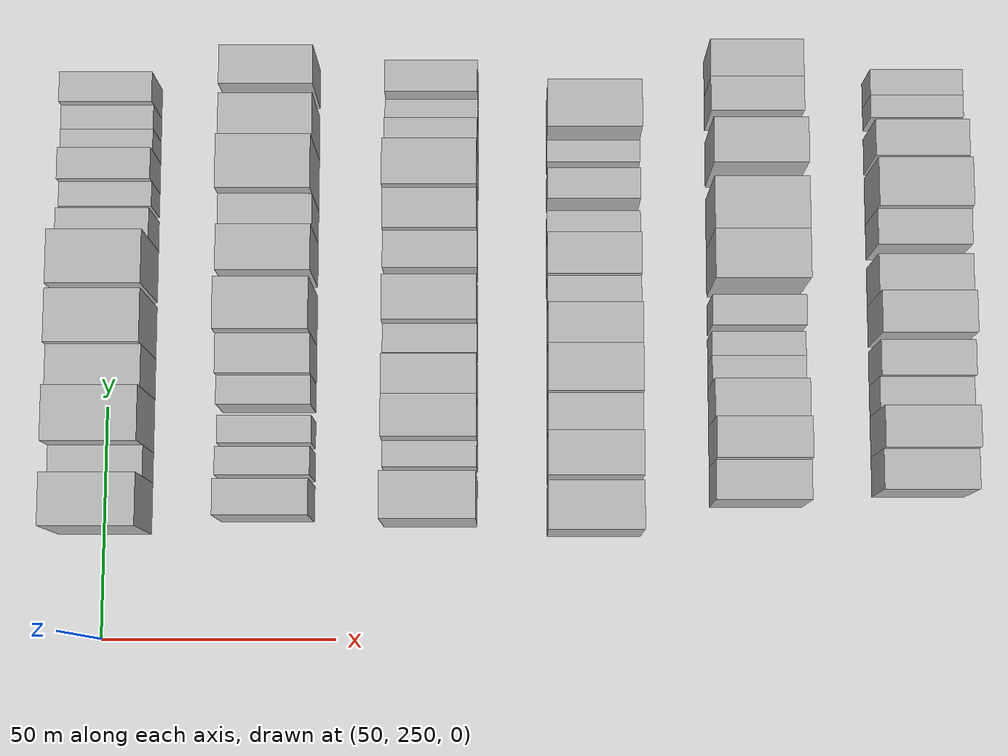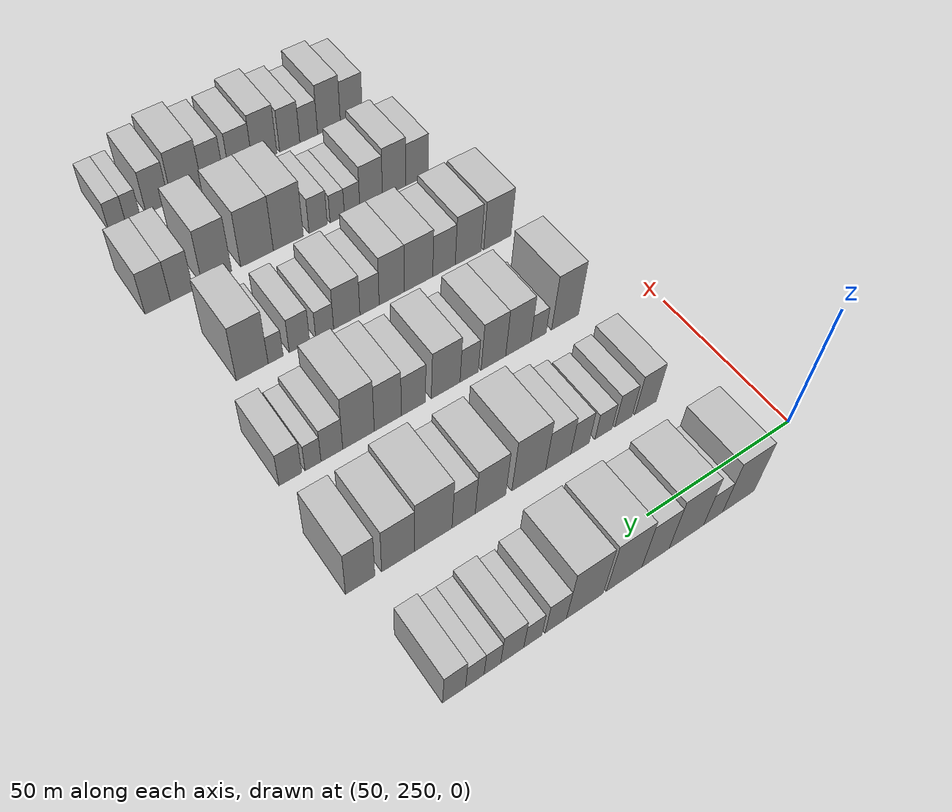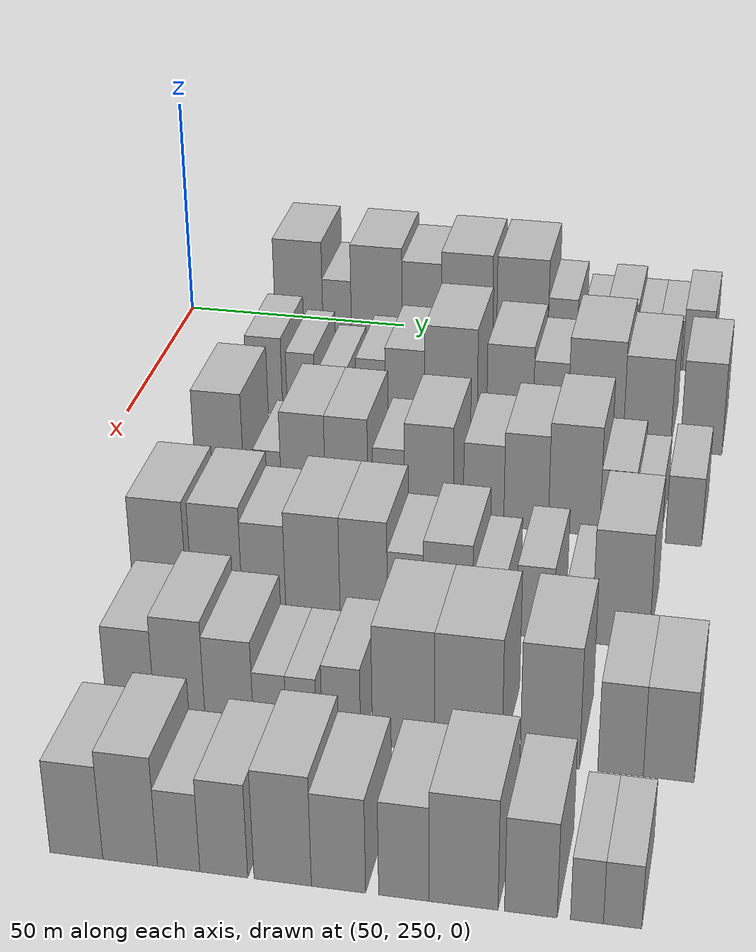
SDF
<sdf version="1.6">
 <world name="default">
  <model name="building_92">
   <static>1</static>
   <pose>50.0000 277.9380 0 0.000000 0.000000 0.000000</pose>
   <link name="link">
    <pose>0 0 12.00 0 0 0</pose>
    <collision name="collision"><geometry><box><size>20.0000 11.0335 24.0000</size></box></geometry></collision>
    <visual name="visual">
     <cast_shadows>0</cast_shadows>
     <geometry><box><size>20.0000 11.0335 24.0000</size></box></geometry>
     <material>
      <script>
       <uri>model://HANNAS_wall/materials/scripts</uri>
       <uri>model://HANNAS_wall/materials/textures</uri>
       <name>vrc/HANNAS_wall</name>
      </script>
     </material>
    </visual>
   </link>
  </model>
  <model name="building_93">
   <static>1</static>
   <pose>50.0000 286.7245 0 0.000000 0.000000 0.000000</pose>
   <link name="link">
    <pose>0 0 7.50 0 0 0</pose>
    <collision name="collision"><geometry><box><size>20.0000 6.5394 15.0000</size></box></geometry></collision>
    <visual name="visual">
     <cast_shadows>0</cast_shadows>
     <geometry><box><size>20.0000 6.5394 15.0000</size></box></geometry>
     <material>
      <script>
       <uri>model://HANNAS_wall/materials/scripts</uri>
       <uri>model://HANNAS_wall/materials/textures</uri>
       <name>vrc/HANNAS_wall</name>
      </script>
     </material>
    </visual>
   </link>
  </model>
  <model name="building_94">
   <static>1</static>
   <pose>50.0000 295.7944 0 0.000000 0.000000 0.000000</pose>
   <link name="link">
    <pose>0 0 12.00 0 0 0</pose>
    <collision name="collision"><geometry><box><size>20.0000 11.6006 24.0000</size></box></geometry></collision>
    <visual name="visual">
     <cast_shadows>0</cast_shadows>
     <geometry><box><size>20.0000 11.6006 24.0000</size></box></geometry>
     <material>
      <script>
       <uri>model://HANNAS_wall/materials/scripts</uri>
       <uri>model://HANNAS_wall/materials/textures</uri>
       <name>vrc/HANNAS_wall</name>
      </script>
     </material>
    </visual>
   </link>
  </model>
  <model name="building_95">
   <static>1</static>
   <pose>50.0000 306.0564 0 0.000000 0.000000 0.000000</pose>
   <link name="link">
    <pose>0 0 10.50 0 0 0</pose>
    <collision name="collision"><geometry><box><size>20.0000 8.9233 21.0000</size></box></geometry></collision>
    <visual name="visual">
     <cast_shadows>0</cast_shadows>
     <geometry><box><size>20.0000 8.9233 21.0000</size></box></geometry>
     <material>
      <script>
       <uri>model://HANNAS_wall/materials/scripts</uri>
       <uri>model://HANNAS_wall/materials/textures</uri>
       <name>vrc/HANNAS_wall</name>
      </script>
     </material>
    </visual>
   </link>
  </model>
  <model name="building_96">
   <static>1</static>
   <pose>50.0000 316.2288 0 0.000000 0.000000 0.000000</pose>
   <link name="link">
    <pose>0 0 12.00 0 0 0</pose>
    <collision name="collision"><geometry><box><size>20.0000 11.4215 24.0000</size></box></geometry></collision>
    <visual name="visual">
     <cast_shadows>0</cast_shadows>
     <geometry><box><size>20.0000 11.4215 24.0000</size></box></geometry>
     <material>
      <script>
       <uri>model://HANNAS_wall/materials/scripts</uri>
       <uri>model://HANNAS_wall/materials/textures</uri>
       <name>vrc/HANNAS_wall</name>
      </script>
     </material>
    </visual>
   </link>
  </model>
  <model name="building_97">
   <static>1</static>
   <pose>50.0000 328.6711 0 0.000000 0.000000 0.000000</pose>
   <link name="link">
    <pose>0 0 12.00 0 0 0</pose>
    <collision name="collision"><geometry><box><size>20.0000 11.4630 24.0000</size></box></geometry></collision>
    <visual name="visual">
     <cast_shadows>0</cast_shadows>
     <geometry><box><size>20.0000 11.4630 24.0000</size></box></geometry>
     <material>
      <script>
       <uri>model://HANNAS_wall/materials/scripts</uri>
       <uri>model://HANNAS_wall/materials/textures</uri>
       <name>vrc/HANNAS_wall</name>
      </script>
     </material>
    </visual>
   </link>
  </model>
  <model name="building_98">
   <static>1</static>
   <pose>50.0000 337.6481 0 0.000000 0.000000 0.000000</pose>
   <link name="link">
    <pose>0 0 7.50 0 0 0</pose>
    <collision name="collision"><geometry><box><size>20.0000 6.4909 15.0000</size></box></geometry></collision>
    <visual name="visual">
     <cast_shadows>0</cast_shadows>
     <geometry><box><size>20.0000 6.4909 15.0000</size></box></geometry>
     <material>
      <script>
       <uri>model://HANNAS_wall/materials/scripts</uri>
       <uri>model://HANNAS_wall/materials/textures</uri>
       <name>vrc/HANNAS_wall</name>
      </script>
     </material>
    </visual>
   </link>
  </model>
  <model name="building_99">
   <static>1</static>
   <pose>50.0000 344.6038 0 0.000000 0.000000 0.000000</pose>
   <link name="link">
    <pose>0 0 6.00 0 0 0</pose>
    <collision name="collision"><geometry><box><size>20.0000 5.4205 12.0000</size></box></geometry></collision>
    <visual name="visual">
     <cast_shadows>0</cast_shadows>
     <geometry><box><size>20.0000 5.4205 12.0000</size></box></geometry>
     <material>
      <script>
       <uri>model://HANNAS_wall/materials/scripts</uri>
       <uri>model://HANNAS_wall/materials/textures</uri>
       <name>vrc/HANNAS_wall</name>
      </script>
     </material>
    </visual>
   </link>
  </model>
  <model name="building_100">
   <static>1</static>
   <pose>50.0000 350.7237 0 0.000000 0.000000 0.000000</pose>
   <link name="link">
    <pose>0 0 7.50 0 0 0</pose>
    <collision name="collision"><geometry><box><size>20.0000 6.8193 15.0000</size></box></geometry></collision>
    <visual name="visual">
     <cast_shadows>0</cast_shadows>
     <geometry><box><size>20.0000 6.8193 15.0000</size></box></geometry>
     <material>
      <script>
       <uri>model://HANNAS_wall/materials/scripts</uri>
       <uri>model://HANNAS_wall/materials/textures</uri>
       <name>vrc/HANNAS_wall</name>
      </script>
     </material>
    </visual>
   </link>
  </model>
  <model name="building_101">
   <static>1</static>
   <pose>50.0000 356.5467 0 0.000000 0.000000 0.000000</pose>
   <link name="link">
    <pose>0 0 6.00 0 0 0</pose>
    <collision name="collision"><geometry><box><size>20.0000 4.8268 12.0000</size></box></geometry></collision>
    <visual name="visual">
     <cast_shadows>0</cast_shadows>
     <geometry><box><size>20.0000 4.8268 12.0000</size></box></geometry>
     <material>
      <script>
       <uri>model://HANNAS_wall/materials/scripts</uri>
       <uri>model://HANNAS_wall/materials/textures</uri>
       <name>vrc/HANNAS_wall</name>
      </script>
     </material>
    </visual>
   </link>
  </model>
  <model name="building_102">
   <static>1</static>
   <pose>50.0000 361.6236 0 0.000000 0.000000 0.000000</pose>
   <link name="link">
    <pose>0 0 6.00 0 0 0</pose>
    <collision name="collision"><geometry><box><size>20.0000 5.3270 12.0000</size></box></geometry></collision>
    <visual name="visual">
     <cast_shadows>0</cast_shadows>
     <geometry><box><size>20.0000 5.3270 12.0000</size></box></geometry>
     <material>
      <script>
       <uri>model://HANNAS_wall/materials/scripts</uri>
       <uri>model://HANNAS_wall/materials/textures</uri>
       <name>vrc/HANNAS_wall</name>
      </script>
     </material>
    </visual>
   </link>
  </model>
  <model name="building_103">
   <static>1</static>
   <pose>50.0000 367.5448 0 0.000000 0.000000 0.000000</pose>
   <link name="link">
    <pose>0 0 7.50 0 0 0</pose>
    <collision name="collision"><geometry><box><size>20.0000 6.5154 15.0000</size></box></geometry></collision>
    <visual name="visual">
     <cast_shadows>0</cast_shadows>
     <geometry><box><size>20.0000 6.5154 15.0000</size></box></geometry>
     <material>
      <script>
       <uri>model://HANNAS_wall/materials/scripts</uri>
       <uri>model://HANNAS_wall/materials/textures</uri>
       <name>vrc/HANNAS_wall</name>
      </script>
     </material>
    </visual>
   </link>
  </model>
  <model name="building_224">
   <static>1</static>
   <pose>85.0000 278.9251 0 0.000000 0.000000 0.000000</pose>
   <link name="link">
    <pose>0 0 9.00 0 0 0</pose>
    <collision name="collision"><geometry><box><size>20.0000 7.6675 18.0000</size></box></geometry></collision>
    <visual name="visual">
     <cast_shadows>0</cast_shadows>
     <geometry><box><size>20.0000 7.6675 18.0000</size></box></geometry>
     <material>
      <script>
       <uri>model://HANNAS_wall/materials/scripts</uri>
       <uri>model://HANNAS_wall/materials/textures</uri>
       <name>vrc/HANNAS_wall</name>
      </script>
     </material>
    </visual>
   </link>
  </model>
  <model name="building_225">
   <static>1</static>
   <pose>85.0000 286.7745 0 0.000000 0.000000 0.000000</pose>
   <link name="link">
    <pose>0 0 7.50 0 0 0</pose>
    <collision name="collision"><geometry><box><size>20.0000 6.0314 15.0000</size></box></geometry></collision>
    <visual name="visual">
     <cast_shadows>0</cast_shadows>
     <geometry><box><size>20.0000 6.0314 15.0000</size></box></geometry>
     <material>
      <script>
       <uri>model://HANNAS_wall/materials/scripts</uri>
       <uri>model://HANNAS_wall/materials/textures</uri>
       <name>vrc/HANNAS_wall</name>
      </script>
     </material>
    </visual>
   </link>
  </model>
  <model name="building_226">
   <static>1</static>
   <pose>85.0000 293.7346 0 0.000000 0.000000 0.000000</pose>
   <link name="link">
    <pose>0 0 6.00 0 0 0</pose>
    <collision name="collision"><geometry><box><size>20.0000 5.8886 12.0000</size></box></geometry></collision>
    <visual name="visual">
     <cast_shadows>0</cast_shadows>
     <geometry><box><size>20.0000 5.8886 12.0000</size></box></geometry>
     <material>
      <script>
       <uri>model://HANNAS_wall/materials/scripts</uri>
       <uri>model://HANNAS_wall/materials/textures</uri>
       <name>vrc/HANNAS_wall</name>
      </script>
     </material>
    </visual>
   </link>
  </model>
  <model name="building_227">
   <static>1</static>
   <pose>85.0000 301.7947 0 0.000000 0.000000 0.000000</pose>
   <link name="link">
    <pose>0 0 7.50 0 0 0</pose>
    <collision name="collision"><geometry><box><size>20.0000 6.2318 15.0000</size></box></geometry></collision>
    <visual name="visual">
     <cast_shadows>0</cast_shadows>
     <geometry><box><size>20.0000 6.2318 15.0000</size></box></geometry>
     <material>
      <script>
       <uri>model://HANNAS_wall/materials/scripts</uri>
       <uri>model://HANNAS_wall/materials/textures</uri>
       <name>vrc/HANNAS_wall</name>
      </script>
     </material>
    </visual>
   </link>
  </model>
  <model name="building_228">
   <static>1</static>
   <pose>85.0000 309.1147 0 0.000000 0.000000 0.000000</pose>
   <link name="link">
    <pose>0 0 9.00 0 0 0</pose>
    <collision name="collision"><geometry><box><size>20.0000 8.4080 18.0000</size></box></geometry></collision>
    <visual name="visual">
     <cast_shadows>0</cast_shadows>
     <geometry><box><size>20.0000 8.4080 18.0000</size></box></geometry>
     <material>
      <script>
       <uri>model://HANNAS_wall/materials/scripts</uri>
       <uri>model://HANNAS_wall/materials/textures</uri>
       <name>vrc/HANNAS_wall</name>
      </script>
     </material>
    </visual>
   </link>
  </model>
  <model name="building_229">
   <static>1</static>
   <pose>85.0000 318.8465 0 0.000000 0.000000 0.000000</pose>
   <link name="link">
    <pose>0 0 12.00 0 0 0</pose>
    <collision name="collision"><geometry><box><size>20.0000 11.0558 24.0000</size></box></geometry></collision>
    <visual name="visual">
     <cast_shadows>0</cast_shadows>
     <geometry><box><size>20.0000 11.0558 24.0000</size></box></geometry>
     <material>
      <script>
       <uri>model://HANNAS_wall/materials/scripts</uri>
       <uri>model://HANNAS_wall/materials/textures</uri>
       <name>vrc/HANNAS_wall</name>
      </script>
     </material>
    </visual>
   </link>
  </model>
  <model name="building_230">
   <static>1</static>
   <pose>85.0000 331.2265 0 0.000000 0.000000 0.000000</pose>
   <link name="link">
    <pose>0 0 10.50 0 0 0</pose>
    <collision name="collision"><geometry><box><size>20.0000 9.7042 21.0000</size></box></geometry></collision>
    <visual name="visual">
     <cast_shadows>0</cast_shadows>
     <geometry><box><size>20.0000 9.7042 21.0000</size></box></geometry>
     <material>
      <script>
       <uri>model://HANNAS_wall/materials/scripts</uri>
       <uri>model://HANNAS_wall/materials/textures</uri>
       <name>vrc/HANNAS_wall</name>
      </script>
     </material>
    </visual>
   </link>
  </model>
  <model name="building_231">
   <static>1</static>
   <pose>85.0000 339.7064 0 0.000000 0.000000 0.000000</pose>
   <link name="link">
    <pose>0 0 9.00 0 0 0</pose>
    <collision name="collision"><geometry><box><size>20.0000 7.2556 18.0000</size></box></geometry></collision>
    <visual name="visual">
     <cast_shadows>0</cast_shadows>
     <geometry><box><size>20.0000 7.2556 18.0000</size></box></geometry>
     <material>
      <script>
       <uri>model://HANNAS_wall/materials/scripts</uri>
       <uri>model://HANNAS_wall/materials/textures</uri>
       <name>vrc/HANNAS_wall</name>
      </script>
     </material>
    </visual>
   </link>
  </model>
  <model name="building_232">
   <static>1</static>
   <pose>85.0000 349.0855 0 0.000000 0.000000 0.000000</pose>
   <link name="link">
    <pose>0 0 12.00 0 0 0</pose>
    <collision name="collision"><geometry><box><size>20.0000 11.5025 24.0000</size></box></geometry></collision>
    <visual name="visual">
     <cast_shadows>0</cast_shadows>
     <geometry><box><size>20.0000 11.5025 24.0000</size></box></geometry>
     <material>
      <script>
       <uri>model://HANNAS_wall/materials/scripts</uri>
       <uri>model://HANNAS_wall/materials/textures</uri>
       <name>vrc/HANNAS_wall</name>
      </script>
     </material>
    </visual>
   </link>
  </model>
  <model name="building_233">
   <static>1</static>
   <pose>85.0000 359.7250 0 0.000000 0.000000 0.000000</pose>
   <link name="link">
    <pose>0 0 10.50 0 0 0</pose>
    <collision name="collision"><geometry><box><size>20.0000 9.7765 21.0000</size></box></geometry></collision>
    <visual name="visual">
     <cast_shadows>0</cast_shadows>
     <geometry><box><size>20.0000 9.7765 21.0000</size></box></geometry>
     <material>
      <script>
       <uri>model://HANNAS_wall/materials/scripts</uri>
       <uri>model://HANNAS_wall/materials/textures</uri>
       <name>vrc/HANNAS_wall</name>
      </script>
     </material>
    </visual>
   </link>
  </model>
  <model name="building_234">
   <static>1</static>
   <pose>85.0000 370.8704 0 0.000000 0.000000 0.000000</pose>
   <link name="link">
    <pose>0 0 10.50 0 0 0</pose>
    <collision name="collision"><geometry><box><size>20.0000 8.5143 21.0000</size></box></geometry></collision>
    <visual name="visual">
     <cast_shadows>0</cast_shadows>
     <geometry><box><size>20.0000 8.5143 21.0000</size></box></geometry>
     <material>
      <script>
       <uri>model://HANNAS_wall/materials/scripts</uri>
       <uri>model://HANNAS_wall/materials/textures</uri>
       <name>vrc/HANNAS_wall</name>
      </script>
     </material>
    </visual>
   </link>
  </model>
  <model name="building_347">
   <static>1</static>
   <pose>120.0000 278.8351 0 0.000000 0.000000 0.000000</pose>
   <link name="link">
    <pose>0 0 12.00 0 0 0</pose>
    <collision name="collision"><geometry><box><size>20.0000 9.8363 24.0000</size></box></geometry></collision>
    <visual name="visual">
     <cast_shadows>0</cast_shadows>
     <geometry><box><size>20.0000 9.8363 24.0000</size></box></geometry>
     <material>
      <script>
       <uri>model://HANNAS_wall/materials/scripts</uri>
       <uri>model://HANNAS_wall/materials/textures</uri>
       <name>vrc/HANNAS_wall</name>
      </script>
     </material>
    </visual>
   </link>
  </model>
  <model name="building_348">
   <static>1</static>
   <pose>120.0000 288.5019 0 0.000000 0.000000 0.000000</pose>
   <link name="link">
    <pose>0 0 6.00 0 0 0</pose>
    <collision name="collision"><geometry><box><size>20.0000 5.4974 12.0000</size></box></geometry></collision>
    <visual name="visual">
     <cast_shadows>0</cast_shadows>
     <geometry><box><size>20.0000 5.4974 12.0000</size></box></geometry>
     <material>
      <script>
       <uri>model://HANNAS_wall/materials/scripts</uri>
       <uri>model://HANNAS_wall/materials/textures</uri>
       <name>vrc/HANNAS_wall</name>
      </script>
     </material>
    </visual>
   </link>
  </model>
  <model name="building_349">
   <static>1</static>
   <pose>120.0000 295.6792 0 0.000000 0.000000 0.000000</pose>
   <link name="link">
    <pose>0 0 10.50 0 0 0</pose>
    <collision name="collision"><geometry><box><size>20.0000 8.8571 21.0000</size></box></geometry></collision>
    <visual name="visual">
     <cast_shadows>0</cast_shadows>
     <geometry><box><size>20.0000 8.8571 21.0000</size></box></geometry>
     <material>
      <script>
       <uri>model://HANNAS_wall/materials/scripts</uri>
       <uri>model://HANNAS_wall/materials/textures</uri>
       <name>vrc/HANNAS_wall</name>
      </script>
     </material>
    </visual>
   </link>
  </model>
  <model name="building_350">
   <static>1</static>
   <pose>120.0000 304.3675 0 0.000000 0.000000 0.000000</pose>
   <link name="link">
    <pose>0 0 10.50 0 0 0</pose>
    <collision name="collision"><geometry><box><size>20.0000 8.5195 21.0000</size></box></geometry></collision>
    <visual name="visual">
     <cast_shadows>0</cast_shadows>
     <geometry><box><size>20.0000 8.5195 21.0000</size></box></geometry>
     <material>
      <script>
       <uri>model://HANNAS_wall/materials/scripts</uri>
       <uri>model://HANNAS_wall/materials/textures</uri>
       <name>vrc/HANNAS_wall</name>
      </script>
     </material>
    </visual>
   </link>
  </model>
  <model name="building_351">
   <static>1</static>
   <pose>120.0000 312.7283 0 0.000000 0.000000 0.000000</pose>
   <link name="link">
    <pose>0 0 7.50 0 0 0</pose>
    <collision name="collision"><geometry><box><size>20.0000 6.2019 15.0000</size></box></geometry></collision>
    <visual name="visual">
     <cast_shadows>0</cast_shadows>
     <geometry><box><size>20.0000 6.2019 15.0000</size></box></geometry>
     <material>
      <script>
       <uri>model://HANNAS_wall/materials/scripts</uri>
       <uri>model://HANNAS_wall/materials/textures</uri>
       <name>vrc/HANNAS_wall</name>
      </script>
     </material>
    </visual>
   </link>
  </model>
  <model name="building_352">
   <static>1</static>
   <pose>120.0000 320.6445 0 0.000000 0.000000 0.000000</pose>
   <link name="link">
    <pose>0 0 10.50 0 0 0</pose>
    <collision name="collision"><geometry><box><size>20.0000 9.6306 21.0000</size></box></geometry></collision>
    <visual name="visual">
     <cast_shadows>0</cast_shadows>
     <geometry><box><size>20.0000 9.6306 21.0000</size></box></geometry>
     <material>
      <script>
       <uri>model://HANNAS_wall/materials/scripts</uri>
       <uri>model://HANNAS_wall/materials/textures</uri>
       <name>vrc/HANNAS_wall</name>
      </script>
     </material>
    </visual>
   </link>
  </model>
  <model name="building_353">
   <static>1</static>
   <pose>120.0000 331.4124 0 0.000000 0.000000 0.000000</pose>
   <link name="link">
    <pose>0 0 9.00 0 0 0</pose>
    <collision name="collision"><geometry><box><size>20.0000 7.9052 18.0000</size></box></geometry></collision>
    <visual name="visual">
     <cast_shadows>0</cast_shadows>
     <geometry><box><size>20.0000 7.9052 18.0000</size></box></geometry>
     <material>
      <script>
       <uri>model://HANNAS_wall/materials/scripts</uri>
       <uri>model://HANNAS_wall/materials/textures</uri>
       <name>vrc/HANNAS_wall</name>
      </script>
     </material>
    </visual>
   </link>
  </model>
  <model name="building_354">
   <static>1</static>
   <pose>120.0000 339.6916 0 0.000000 0.000000 0.000000</pose>
   <link name="link">
    <pose>0 0 10.50 0 0 0</pose>
    <collision name="collision"><geometry><box><size>20.0000 8.6532 21.0000</size></box></geometry></collision>
    <visual name="visual">
     <cast_shadows>0</cast_shadows>
     <geometry><box><size>20.0000 8.6532 21.0000</size></box></geometry>
     <material>
      <script>
       <uri>model://HANNAS_wall/materials/scripts</uri>
       <uri>model://HANNAS_wall/materials/textures</uri>
       <name>vrc/HANNAS_wall</name>
      </script>
     </material>
    </visual>
   </link>
  </model>
  <model name="building_355">
   <static>1</static>
   <pose>120.0000 348.9845 0 0.000000 0.000000 0.000000</pose>
   <link name="link">
    <pose>0 0 12.00 0 0 0</pose>
    <collision name="collision"><geometry><box><size>20.0000 9.9327 24.0000</size></box></geometry></collision>
    <visual name="visual">
     <cast_shadows>0</cast_shadows>
     <geometry><box><size>20.0000 9.9327 24.0000</size></box></geometry>
     <material>
      <script>
       <uri>model://HANNAS_wall/materials/scripts</uri>
       <uri>model://HANNAS_wall/materials/textures</uri>
       <name>vrc/HANNAS_wall</name>
      </script>
     </material>
    </visual>
   </link>
  </model>
  <model name="building_356">
   <static>1</static>
   <pose>120.0000 357.3111 0 0.000000 0.000000 0.000000</pose>
   <link name="link">
    <pose>0 0 7.50 0 0 0</pose>
    <collision name="collision"><geometry><box><size>20.0000 6.7205 15.0000</size></box></geometry></collision>
    <visual name="visual">
     <cast_shadows>0</cast_shadows>
     <geometry><box><size>20.0000 6.7205 15.0000</size></box></geometry>
     <material>
      <script>
       <uri>model://HANNAS_wall/materials/scripts</uri>
       <uri>model://HANNAS_wall/materials/textures</uri>
       <name>vrc/HANNAS_wall</name>
      </script>
     </material>
    </visual>
   </link>
  </model>
  <model name="building_357">
   <static>1</static>
   <pose>120.0000 363.1300 0 0.000000 0.000000 0.000000</pose>
   <link name="link">
    <pose>0 0 6.00 0 0 0</pose>
    <collision name="collision"><geometry><box><size>20.0000 4.9174 12.0000</size></box></geometry></collision>
    <visual name="visual">
     <cast_shadows>0</cast_shadows>
     <geometry><box><size>20.0000 4.9174 12.0000</size></box></geometry>
     <material>
      <script>
       <uri>model://HANNAS_wall/materials/scripts</uri>
       <uri>model://HANNAS_wall/materials/textures</uri>
       <name>vrc/HANNAS_wall</name>
      </script>
     </material>
    </visual>
   </link>
  </model>
  <model name="building_358">
   <static>1</static>
   <pose>120.0000 370.0274 0 0.000000 0.000000 0.000000</pose>
   <link name="link">
    <pose>0 0 7.50 0 0 0</pose>
    <collision name="collision"><geometry><box><size>20.0000 6.8775 15.0000</size></box></geometry></collision>
    <visual name="visual">
     <cast_shadows>0</cast_shadows>
     <geometry><box><size>20.0000 6.8775 15.0000</size></box></geometry>
     <material>
      <script>
       <uri>model://HANNAS_wall/materials/scripts</uri>
       <uri>model://HANNAS_wall/materials/textures</uri>
       <name>vrc/HANNAS_wall</name>
      </script>
     </material>
    </visual>
   </link>
  </model>
  <model name="building_473">
   <static>1</static>
   <pose>155.0000 276.9858 0 0.000000 0.000000 0.000000</pose>
   <link name="link">
    <pose>0 0 10.50 0 0 0</pose>
    <collision name="collision"><geometry><box><size>20.0000 10.2063 21.0000</size></box></geometry></collision>
    <visual name="visual">
     <cast_shadows>0</cast_shadows>
     <geometry><box><size>20.0000 10.2063 21.0000</size></box></geometry>
     <material>
      <script>
       <uri>model://HANNAS_wall/materials/scripts</uri>
       <uri>model://HANNAS_wall/materials/textures</uri>
       <name>vrc/HANNAS_wall</name>
      </script>
     </material>
    </visual>
   </link>
  </model>
  <model name="building_474">
   <static>1</static>
   <pose>155.0000 287.8307 0 0.000000 0.000000 0.000000</pose>
   <link name="link">
    <pose>0 0 10.50 0 0 0</pose>
    <collision name="collision"><geometry><box><size>20.0000 9.4836 21.0000</size></box></geometry></collision>
    <visual name="visual">
     <cast_shadows>0</cast_shadows>
     <geometry><box><size>20.0000 9.4836 21.0000</size></box></geometry>
     <material>
      <script>
       <uri>model://HANNAS_wall/materials/scripts</uri>
       <uri>model://HANNAS_wall/materials/textures</uri>
       <name>vrc/HANNAS_wall</name>
      </script>
     </material>
    </visual>
   </link>
  </model>
  <model name="building_475">
   <static>1</static>
   <pose>155.0000 296.6466 0 0.000000 0.000000 0.000000</pose>
   <link name="link">
    <pose>0 0 9.00 0 0 0</pose>
    <collision name="collision"><geometry><box><size>20.0000 8.1480 18.0000</size></box></geometry></collision>
    <visual name="visual">
     <cast_shadows>0</cast_shadows>
     <geometry><box><size>20.0000 8.1480 18.0000</size></box></geometry>
     <material>
      <script>
       <uri>model://HANNAS_wall/materials/scripts</uri>
       <uri>model://HANNAS_wall/materials/textures</uri>
       <name>vrc/HANNAS_wall</name>
      </script>
     </material>
    </visual>
   </link>
  </model>
  <model name="building_476">
   <static>1</static>
   <pose>155.0000 305.7759 0 0.000000 0.000000 0.000000</pose>
   <link name="link">
    <pose>0 0 10.50 0 0 0</pose>
    <collision name="collision"><geometry><box><size>20.0000 10.1106 21.0000</size></box></geometry></collision>
    <visual name="visual">
     <cast_shadows>0</cast_shadows>
     <geometry><box><size>20.0000 10.1106 21.0000</size></box></geometry>
     <material>
      <script>
       <uri>model://HANNAS_wall/materials/scripts</uri>
       <uri>model://HANNAS_wall/materials/textures</uri>
       <name>vrc/HANNAS_wall</name>
      </script>
     </material>
    </visual>
   </link>
  </model>
  <model name="building_477">
   <static>1</static>
   <pose>155.0000 315.2015 0 0.000000 0.000000 0.000000</pose>
   <link name="link">
    <pose>0 0 10.50 0 0 0</pose>
    <collision name="collision"><geometry><box><size>20.0000 8.7406 21.0000</size></box></geometry></collision>
    <visual name="visual">
     <cast_shadows>0</cast_shadows>
     <geometry><box><size>20.0000 8.7406 21.0000</size></box></geometry>
     <material>
      <script>
       <uri>model://HANNAS_wall/materials/scripts</uri>
       <uri>model://HANNAS_wall/materials/textures</uri>
       <name>vrc/HANNAS_wall</name>
      </script>
     </material>
    </visual>
   </link>
  </model>
  <model name="building_478">
   <static>1</static>
   <pose>155.0000 322.8687 0 0.000000 0.000000 0.000000</pose>
   <link name="link">
    <pose>0 0 7.50 0 0 0</pose>
    <collision name="collision"><geometry><box><size>20.0000 6.5939 15.0000</size></box></geometry></collision>
    <visual name="visual">
     <cast_shadows>0</cast_shadows>
     <geometry><box><size>20.0000 6.5939 15.0000</size></box></geometry>
     <material>
      <script>
       <uri>model://HANNAS_wall/materials/scripts</uri>
       <uri>model://HANNAS_wall/materials/textures</uri>
       <name>vrc/HANNAS_wall</name>
      </script>
     </material>
    </visual>
   </link>
  </model>
  <model name="building_479">
   <static>1</static>
   <pose>155.0000 330.6109 0 0.000000 0.000000 0.000000</pose>
   <link name="link">
    <pose>0 0 9.00 0 0 0</pose>
    <collision name="collision"><geometry><box><size>20.0000 8.8905 18.0000</size></box></geometry></collision>
    <visual name="visual">
     <cast_shadows>0</cast_shadows>
     <geometry><box><size>20.0000 8.8905 18.0000</size></box></geometry>
     <material>
      <script>
       <uri>model://HANNAS_wall/materials/scripts</uri>
       <uri>model://HANNAS_wall/materials/textures</uri>
       <name>vrc/HANNAS_wall</name>
      </script>
     </material>
    </visual>
   </link>
  </model>
  <model name="building_480">
   <static>1</static>
   <pose>155.0000 338.0350 0 0.000000 0.000000 0.000000</pose>
   <link name="link">
    <pose>0 0 6.00 0 0 0</pose>
    <collision name="collision"><geometry><box><size>20.0000 5.9577 12.0000</size></box></geometry></collision>
    <visual name="visual">
     <cast_shadows>0</cast_shadows>
     <geometry><box><size>20.0000 5.9577 12.0000</size></box></geometry>
     <material>
      <script>
       <uri>model://HANNAS_wall/materials/scripts</uri>
       <uri>model://HANNAS_wall/materials/textures</uri>
       <name>vrc/HANNAS_wall</name>
      </script>
     </material>
    </visual>
   </link>
  </model>
  <model name="building_481">
   <static>1</static>
   <pose>155.0000 346.3625 0 0.000000 0.000000 0.000000</pose>
   <link name="link">
    <pose>0 0 7.50 0 0 0</pose>
    <collision name="collision"><geometry><box><size>20.0000 6.6973 15.0000</size></box></geometry></collision>
    <visual name="visual">
     <cast_shadows>0</cast_shadows>
     <geometry><box><size>20.0000 6.6973 15.0000</size></box></geometry>
     <material>
      <script>
       <uri>model://HANNAS_wall/materials/scripts</uri>
       <uri>model://HANNAS_wall/materials/textures</uri>
       <name>vrc/HANNAS_wall</name>
      </script>
     </material>
    </visual>
   </link>
  </model>
  <model name="building_482">
   <static>1</static>
   <pose>155.0000 354.1279 0 0.000000 0.000000 0.000000</pose>
   <link name="link">
    <pose>0 0 6.00 0 0 0</pose>
    <collision name="collision"><geometry><box><size>20.0000 4.8336 12.0000</size></box></geometry></collision>
    <visual name="visual">
     <cast_shadows>0</cast_shadows>
     <geometry><box><size>20.0000 4.8336 12.0000</size></box></geometry>
     <material>
      <script>
       <uri>model://HANNAS_wall/materials/scripts</uri>
       <uri>model://HANNAS_wall/materials/textures</uri>
       <name>vrc/HANNAS_wall</name>
      </script>
     </material>
    </visual>
   </link>
  </model>
  <model name="building_483">
   <static>1</static>
   <pose>155.0000 361.6229 0 0.000000 0.000000 0.000000</pose>
   <link name="link">
    <pose>0 0 12.00 0 0 0</pose>
    <collision name="collision"><geometry><box><size>20.0000 10.1564 24.0000</size></box></geometry></collision>
    <visual name="visual">
     <cast_shadows>0</cast_shadows>
     <geometry><box><size>20.0000 10.1564 24.0000</size></box></geometry>
     <material>
      <script>
       <uri>model://HANNAS_wall/materials/scripts</uri>
       <uri>model://HANNAS_wall/materials/textures</uri>
       <name>vrc/HANNAS_wall</name>
      </script>
     </material>
    </visual>
   </link>
  </model>
  <model name="building_603">
   <static>1</static>
   <pose>190.0000 282.4911 0 0.000000 0.000000 0.000000</pose>
   <link name="link">
    <pose>0 0 9.00 0 0 0</pose>
    <collision name="collision"><geometry><box><size>20.0000 8.4583 18.0000</size></box></geometry></collision>
    <visual name="visual">
     <cast_shadows>0</cast_shadows>
     <geometry><box><size>20.0000 8.4583 18.0000</size></box></geometry>
     <material>
      <script>
       <uri>model://HANNAS_wall/materials/scripts</uri>
       <uri>model://HANNAS_wall/materials/textures</uri>
       <name>vrc/HANNAS_wall</name>
      </script>
     </material>
    </visual>
   </link>
  </model>
  <model name="building_604">
   <static>1</static>
   <pose>190.0000 291.1003 0 0.000000 0.000000 0.000000</pose>
   <link name="link">
    <pose>0 0 10.50 0 0 0</pose>
    <collision name="collision"><geometry><box><size>20.0000 8.7602 21.0000</size></box></geometry></collision>
    <visual name="visual">
     <cast_shadows>0</cast_shadows>
     <geometry><box><size>20.0000 8.7602 21.0000</size></box></geometry>
     <material>
      <script>
       <uri>model://HANNAS_wall/materials/scripts</uri>
       <uri>model://HANNAS_wall/materials/textures</uri>
       <name>vrc/HANNAS_wall</name>
      </script>
     </material>
    </visual>
   </link>
  </model>
  <model name="building_605">
   <static>1</static>
   <pose>190.0000 299.6622 0 0.000000 0.000000 0.000000</pose>
   <link name="link">
    <pose>0 0 9.00 0 0 0</pose>
    <collision name="collision"><geometry><box><size>20.0000 8.3634 18.0000</size></box></geometry></collision>
    <visual name="visual">
     <cast_shadows>0</cast_shadows>
     <geometry><box><size>20.0000 8.3634 18.0000</size></box></geometry>
     <material>
      <script>
       <uri>model://HANNAS_wall/materials/scripts</uri>
       <uri>model://HANNAS_wall/materials/textures</uri>
       <name>vrc/HANNAS_wall</name>
      </script>
     </material>
    </visual>
   </link>
  </model>
  <model name="building_606">
   <static>1</static>
   <pose>190.0000 306.6546 0 0.000000 0.000000 0.000000</pose>
   <link name="link">
    <pose>0 0 6.00 0 0 0</pose>
    <collision name="collision"><geometry><box><size>20.0000 5.6214 12.0000</size></box></geometry></collision>
    <visual name="visual">
     <cast_shadows>0</cast_shadows>
     <geometry><box><size>20.0000 5.6214 12.0000</size></box></geometry>
     <material>
      <script>
       <uri>model://HANNAS_wall/materials/scripts</uri>
       <uri>model://HANNAS_wall/materials/textures</uri>
       <name>vrc/HANNAS_wall</name>
      </script>
     </material>
    </visual>
   </link>
  </model>
  <model name="building_607">
   <static>1</static>
   <pose>190.0000 312.0472 0 0.000000 0.000000 0.000000</pose>
   <link name="link">
    <pose>0 0 6.00 0 0 0</pose>
    <collision name="collision"><geometry><box><size>20.0000 5.1639 12.0000</size></box></geometry></collision>
    <visual name="visual">
     <cast_shadows>0</cast_shadows>
     <geometry><box><size>20.0000 5.1639 12.0000</size></box></geometry>
     <material>
      <script>
       <uri>model://HANNAS_wall/materials/scripts</uri>
       <uri>model://HANNAS_wall/materials/textures</uri>
       <name>vrc/HANNAS_wall</name>
      </script>
     </material>
    </visual>
   </link>
  </model>
  <model name="building_608">
   <static>1</static>
   <pose>190.0000 318.8870 0 0.000000 0.000000 0.000000</pose>
   <link name="link">
    <pose>0 0 7.50 0 0 0</pose>
    <collision name="collision"><geometry><box><size>20.0000 6.5157 15.0000</size></box></geometry></collision>
    <visual name="visual">
     <cast_shadows>0</cast_shadows>
     <geometry><box><size>20.0000 6.5157 15.0000</size></box></geometry>
     <material>
      <script>
       <uri>model://HANNAS_wall/materials/scripts</uri>
       <uri>model://HANNAS_wall/materials/textures</uri>
       <name>vrc/HANNAS_wall</name>
      </script>
     </material>
    </visual>
   </link>
  </model>
  <model name="building_609">
   <static>1</static>
   <pose>190.0000 329.3738 0 0.000000 0.000000 0.000000</pose>
   <link name="link">
    <pose>0 0 12.00 0 0 0</pose>
    <collision name="collision"><geometry><box><size>20.0000 10.4577 24.0000</size></box></geometry></collision>
    <visual name="visual">
     <cast_shadows>0</cast_shadows>
     <geometry><box><size>20.0000 10.4577 24.0000</size></box></geometry>
     <material>
      <script>
       <uri>model://HANNAS_wall/materials/scripts</uri>
       <uri>model://HANNAS_wall/materials/textures</uri>
       <name>vrc/HANNAS_wall</name>
      </script>
     </material>
    </visual>
   </link>
  </model>
  <model name="building_610">
   <static>1</static>
   <pose>190.0000 340.2167 0 0.000000 0.000000 0.000000</pose>
   <link name="link">
    <pose>0 0 12.00 0 0 0</pose>
    <collision name="collision"><geometry><box><size>20.0000 11.2281 24.0000</size></box></geometry></collision>
    <visual name="visual">
     <cast_shadows>0</cast_shadows>
     <geometry><box><size>20.0000 11.2281 24.0000</size></box></geometry>
     <material>
      <script>
       <uri>model://HANNAS_wall/materials/scripts</uri>
       <uri>model://HANNAS_wall/materials/textures</uri>
       <name>vrc/HANNAS_wall</name>
      </script>
     </material>
    </visual>
   </link>
  </model>
  <model name="building_611">
   <static>1</static>
   <pose>190.0000 353.7191 0 0.000000 0.000000 0.000000</pose>
   <link name="link">
    <pose>0 0 12.00 0 0 0</pose>
    <collision name="collision"><geometry><box><size>20.0000 9.7766 24.0000</size></box></geometry></collision>
    <visual name="visual">
     <cast_shadows>0</cast_shadows>
     <geometry><box><size>20.0000 9.7766 24.0000</size></box></geometry>
     <material>
      <script>
       <uri>model://HANNAS_wall/materials/scripts</uri>
       <uri>model://HANNAS_wall/materials/textures</uri>
       <name>vrc/HANNAS_wall</name>
      </script>
     </material>
    </visual>
   </link>
  </model>
  <model name="building_612">
   <static>1</static>
   <pose>190.0000 365.3247 0 0.000000 0.000000 0.000000</pose>
   <link name="link">
    <pose>0 0 9.00 0 0 0</pose>
    <collision name="collision"><geometry><box><size>20.0000 7.4347 18.0000</size></box></geometry></collision>
    <visual name="visual">
     <cast_shadows>0</cast_shadows>
     <geometry><box><size>20.0000 7.4347 18.0000</size></box></geometry>
     <material>
      <script>
       <uri>model://HANNAS_wall/materials/scripts</uri>
       <uri>model://HANNAS_wall/materials/textures</uri>
       <name>vrc/HANNAS_wall</name>
      </script>
     </material>
    </visual>
   </link>
  </model>
  <model name="building_613">
   <static>1</static>
   <pose>190.0000 373.1510 0 0.000000 0.000000 0.000000</pose>
   <link name="link">
    <pose>0 0 9.00 0 0 0</pose>
    <collision name="collision"><geometry><box><size>20.0000 8.2178 18.0000</size></box></geometry></collision>
    <visual name="visual">
     <cast_shadows>0</cast_shadows>
     <geometry><box><size>20.0000 8.2178 18.0000</size></box></geometry>
     <material>
      <script>
       <uri>model://HANNAS_wall/materials/scripts</uri>
       <uri>model://HANNAS_wall/materials/textures</uri>
       <name>vrc/HANNAS_wall</name>
      </script>
     </material>
    </visual>
   </link>
  </model>
  <model name="building_717">
   <static>1</static>
   <pose>225.0000 284.7253 0 0.000000 0.000000 0.000000</pose>
   <link name="link">
    <pose>0 0 9.00 0 0 0</pose>
    <collision name="collision"><geometry><box><size>20.0000 8.5200 18.0000</size></box></geometry></collision>
    <visual name="visual">
     <cast_shadows>0</cast_shadows>
     <geometry><box><size>20.0000 8.5200 18.0000</size></box></geometry>
     <material>
      <script>
       <uri>model://HANNAS_wall/materials/scripts</uri>
       <uri>model://HANNAS_wall/materials/textures</uri>
       <name>vrc/HANNAS_wall</name>
      </script>
     </material>
    </visual>
   </link>
  </model>
  <model name="building_718">
   <static>1</static>
   <pose>225.0000 293.3656 0 0.000000 0.000000 0.000000</pose>
   <link name="link">
    <pose>0 0 10.50 0 0 0</pose>
    <collision name="collision"><geometry><box><size>20.0000 8.7605 21.0000</size></box></geometry></collision>
    <visual name="visual">
     <cast_shadows>0</cast_shadows>
     <geometry><box><size>20.0000 8.7605 21.0000</size></box></geometry>
     <material>
      <script>
       <uri>model://HANNAS_wall/materials/scripts</uri>
       <uri>model://HANNAS_wall/materials/textures</uri>
       <name>vrc/HANNAS_wall</name>
      </script>
     </material>
    </visual>
   </link>
  </model>
  <model name="building_719">
   <static>1</static>
   <pose>225.0000 301.1155 0 0.000000 0.000000 0.000000</pose>
   <link name="link">
    <pose>0 0 7.50 0 0 0</pose>
    <collision name="collision"><geometry><box><size>20.0000 6.7394 15.0000</size></box></geometry></collision>
    <visual name="visual">
     <cast_shadows>0</cast_shadows>
     <geometry><box><size>20.0000 6.7394 15.0000</size></box></geometry>
     <material>
      <script>
       <uri>model://HANNAS_wall/materials/scripts</uri>
       <uri>model://HANNAS_wall/materials/textures</uri>
       <name>vrc/HANNAS_wall</name>
      </script>
     </material>
    </visual>
   </link>
  </model>
  <model name="building_720">
   <static>1</static>
   <pose>225.0000 308.2619 0 0.000000 0.000000 0.000000</pose>
   <link name="link">
    <pose>0 0 9.00 0 0 0</pose>
    <collision name="collision"><geometry><box><size>20.0000 7.5535 18.0000</size></box></geometry></collision>
    <visual name="visual">
     <cast_shadows>0</cast_shadows>
     <geometry><box><size>20.0000 7.5535 18.0000</size></box></geometry>
     <material>
      <script>
       <uri>model://HANNAS_wall/materials/scripts</uri>
       <uri>model://HANNAS_wall/materials/textures</uri>
       <name>vrc/HANNAS_wall</name>
      </script>
     </material>
    </visual>
   </link>
  </model>
  <model name="building_721">
   <static>1</static>
   <pose>225.0000 317.5234 0 0.000000 0.000000 0.000000</pose>
   <link name="link">
    <pose>0 0 10.50 0 0 0</pose>
    <collision name="collision"><geometry><box><size>20.0000 8.9696 21.0000</size></box></geometry></collision>
    <visual name="visual">
     <cast_shadows>0</cast_shadows>
     <geometry><box><size>20.0000 8.9696 21.0000</size></box></geometry>
     <material>
      <script>
       <uri>model://HANNAS_wall/materials/scripts</uri>
       <uri>model://HANNAS_wall/materials/textures</uri>
       <name>vrc/HANNAS_wall</name>
      </script>
     </material>
    </visual>
   </link>
  </model>
  <model name="building_722">
   <static>1</static>
   <pose>225.0000 326.2111 0 0.000000 0.000000 0.000000</pose>
   <link name="link">
    <pose>0 0 9.00 0 0 0</pose>
    <collision name="collision"><geometry><box><size>20.0000 8.4057 18.0000</size></box></geometry></collision>
    <visual name="visual">
     <cast_shadows>0</cast_shadows>
     <geometry><box><size>20.0000 8.4057 18.0000</size></box></geometry>
     <material>
      <script>
       <uri>model://HANNAS_wall/materials/scripts</uri>
       <uri>model://HANNAS_wall/materials/textures</uri>
       <name>vrc/HANNAS_wall</name>
      </script>
     </material>
    </visual>
   </link>
  </model>
  <model name="building_723">
   <static>1</static>
   <pose>225.0000 336.2774 0 0.000000 0.000000 0.000000</pose>
   <link name="link">
    <pose>0 0 9.00 0 0 0</pose>
    <collision name="collision"><geometry><box><size>20.0000 7.7269 18.0000</size></box></geometry></collision>
    <visual name="visual">
     <cast_shadows>0</cast_shadows>
     <geometry><box><size>20.0000 7.7269 18.0000</size></box></geometry>
     <material>
      <script>
       <uri>model://HANNAS_wall/materials/scripts</uri>
       <uri>model://HANNAS_wall/materials/textures</uri>
       <name>vrc/HANNAS_wall</name>
      </script>
     </material>
    </visual>
   </link>
  </model>
  <model name="building_724">
   <static>1</static>
   <pose>225.0000 345.3906 0 0.000000 0.000000 0.000000</pose>
   <link name="link">
    <pose>0 0 10.50 0 0 0</pose>
    <collision name="collision"><geometry><box><size>20.0000 10.4997 21.0000</size></box></geometry></collision>
    <visual name="visual">
     <cast_shadows>0</cast_shadows>
     <geometry><box><size>20.0000 10.4997 21.0000</size></box></geometry>
     <material>
      <script>
       <uri>model://HANNAS_wall/materials/scripts</uri>
       <uri>model://HANNAS_wall/materials/textures</uri>
       <name>vrc/HANNAS_wall</name>
      </script>
     </material>
    </visual>
   </link>
  </model>
  <model name="building_725">
   <static>1</static>
   <pose>225.0000 355.5970 0 0.000000 0.000000 0.000000</pose>
   <link name="link">
    <pose>0 0 9.00 0 0 0</pose>
    <collision name="collision"><geometry><box><size>20.0000 7.9130 18.0000</size></box></geometry></collision>
    <visual name="visual">
     <cast_shadows>0</cast_shadows>
     <geometry><box><size>20.0000 7.9130 18.0000</size></box></geometry>
     <material>
      <script>
       <uri>model://HANNAS_wall/materials/scripts</uri>
       <uri>model://HANNAS_wall/materials/textures</uri>
       <name>vrc/HANNAS_wall</name>
      </script>
     </material>
    </visual>
   </link>
  </model>
  <model name="building_726">
   <static>1</static>
   <pose>225.0000 364.0117 0 0.000000 0.000000 0.000000</pose>
   <link name="link">
    <pose>0 0 6.00 0 0 0</pose>
    <collision name="collision"><geometry><box><size>20.0000 4.9166 12.0000</size></box></geometry></collision>
    <visual name="visual">
     <cast_shadows>0</cast_shadows>
     <geometry><box><size>20.0000 4.9166 12.0000</size></box></geometry>
     <material>
      <script>
       <uri>model://HANNAS_wall/materials/scripts</uri>
       <uri>model://HANNAS_wall/materials/textures</uri>
       <name>vrc/HANNAS_wall</name>
      </script>
     </material>
    </visual>
   </link>
  </model>
  <model name="building_727">
   <static>1</static>
   <pose>225.0000 369.3149 0 0.000000 0.000000 0.000000</pose>
   <link name="link">
    <pose>0 0 6.00 0 0 0</pose>
    <collision name="collision"><geometry><box><size>20.0000 5.6898 12.0000</size></box></geometry></collision>
    <visual name="visual">
     <cast_shadows>0</cast_shadows>
     <geometry><box><size>20.0000 5.6898 12.0000</size></box></geometry>
     <material>
      <script>
       <uri>model://HANNAS_wall/materials/scripts</uri>
       <uri>model://HANNAS_wall/materials/textures</uri>
       <name>vrc/HANNAS_wall</name>
      </script>
     </material>
    </visual>
   </link>
  </model>
 </world>
</sdf>
